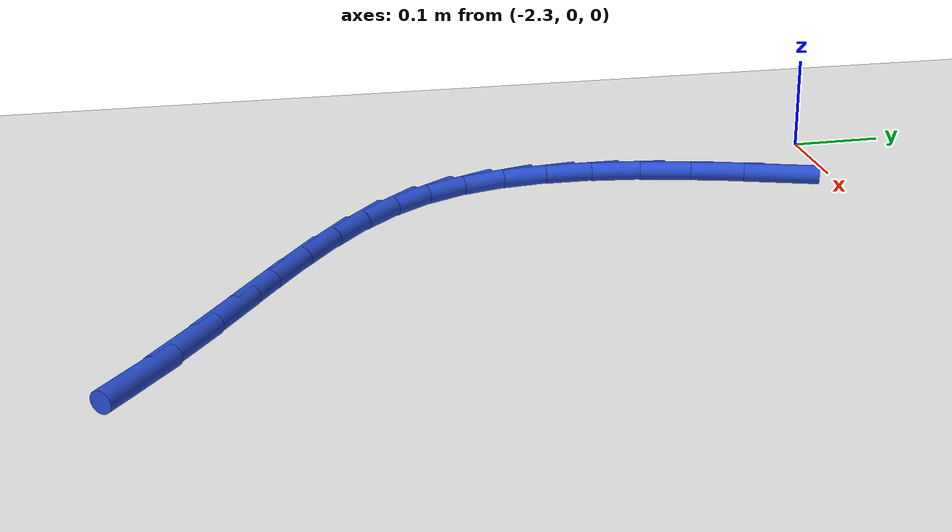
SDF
<sdf version="1.6">
 <world name="default">
  <model name="ground_plane">
   <static>1</static>
   <link name="link">
    <collision name="collision">
     <geometry><plane><normal>0 0 1</normal><size>100 100</size></plane></geometry>
     <surface><friction><ode><mu>100</mu><mu2>50</mu2></ode></friction></surface>
    </collision>
    <visual name="visual">
     <cast_shadows>0</cast_shadows>
     <geometry><plane><normal>0 0 1</normal><size>100 100</size></plane></geometry>
     <material>
      <script><uri>file://media/materials/scripts/gazebo.material</uri><name>Gazebo/WhiteGlow</name></script>
     </material>
    </visual>
   </link>
  </model>
  <model name="line">
   <link name="link_66">
    <pose>-2.186327415164871 -0.05943001823163808 0.01 0 1.57 1.2614615422744817</pose>
    <collision name="collision">
     <geometry><cylinder><radius>0.01</radius><length>0.08</length></cylinder></geometry>
    </collision>
    <visual name="visual">
     <material>
      <script><name>Gazebo/Blue</name><uri>file://media/materials/scripts/gazebo.material</uri></script>
     </material>
     <geometry><cylinder><radius>0.01</radius><length>0.08</length></cylinder></geometry>
    </visual>
   </link>
   <link name="link_67">
    <pose>-2.203733529710292 -0.11389319431254626 0.01 0 1.57 1.3077008810498016</pose>
    <collision name="collision">
     <geometry><cylinder><radius>0.01</radius><length>0.08</length></cylinder></geometry>
    </collision>
    <visual name="visual">
     <material>
      <script><name>Gazebo/Blue</name><uri>file://media/materials/scripts/gazebo.material</uri></script>
     </material>
     <geometry><cylinder><radius>0.01</radius><length>0.08</length></cylinder></geometry>
    </visual>
   </link>
   <link name="link_68">
    <pose>-2.2180352258589924 -0.16699247620333488 0.01 0 1.57 1.3694814651273493</pose>
    <collision name="collision">
     <geometry><cylinder><radius>0.01</radius><length>0.08</length></cylinder></geometry>
    </collision>
    <visual name="visual">
     <material>
      <script><name>Gazebo/Blue</name><uri>file://media/materials/scripts/gazebo.material</uri></script>
     </material>
     <geometry><cylinder><radius>0.01</radius><length>0.08</length></cylinder></geometry>
    </visual>
   </link>
   <link name="link_69">
    <pose>-2.2285388616440196 -0.21846088175727735 0.01 0 1.57 1.4501054148014685</pose>
    <collision name="collision">
     <geometry><cylinder><radius>0.01</radius><length>0.08</length></cylinder></geometry>
    </collision>
    <visual name="visual">
     <material>
      <script><name>Gazebo/Blue</name><uri>file://media/materials/scripts/gazebo.material</uri></script>
     </material>
     <geometry><cylinder><radius>0.01</radius><length>0.08</length></cylinder></geometry>
    </visual>
   </link>
   <link name="link_70">
    <pose>-2.234550795098422 -0.26803142882764763 0.01 0 1.57 1.5533616029075807</pose>
    <collision name="collision">
     <geometry><cylinder><radius>0.01</radius><length>0.08</length></cylinder></geometry>
    </collision>
    <visual name="visual">
     <material>
      <script><name>Gazebo/Blue</name><uri>file://media/materials/scripts/gazebo.material</uri></script>
     </material>
     <geometry><cylinder><radius>0.01</radius><length>0.08</length></cylinder></geometry>
    </visual>
   </link>
   <link name="link_71">
    <pose>-2.2353773842552425 -0.3154371352677168 0.01 0 1.57 -1.458924686413017</pose>
    <collision name="collision">
     <geometry><cylinder><radius>0.01</radius><length>0.08</length></cylinder></geometry>
    </collision>
    <visual name="visual">
     <material>
      <script><name>Gazebo/Blue</name><uri>file://media/materials/scripts/gazebo.material</uri></script>
     </material>
     <geometry><cylinder><radius>0.01</radius><length>0.08</length></cylinder></geometry>
    </visual>
   </link>
   <link name="link_72">
    <pose>-2.230324987147531 -0.36041101893075855 0.01 0 1.57 -1.3024437795642843</pose>
    <collision name="collision">
     <geometry><cylinder><radius>0.01</radius><length>0.08</length></cylinder></geometry>
    </collision>
    <visual name="visual">
     <material>
      <script><name>Gazebo/Blue</name><uri>file://media/materials/scripts/gazebo.material</uri></script>
     </material>
     <geometry><cylinder><radius>0.01</radius><length>0.08</length></cylinder></geometry>
    </visual>
   </link>
   <link name="link_73">
    <pose>-2.218699961808333 -0.4026860976700458 0.01 0 1.57 -1.1228043198596822</pose>
    <collision name="collision">
     <geometry><cylinder><radius>0.01</radius><length>0.08</length></cylinder></geometry>
    </collision>
    <visual name="visual">
     <material>
      <script><name>Gazebo/Blue</name><uri>file://media/materials/scripts/gazebo.material</uri></script>
     </material>
     <geometry><cylinder><radius>0.01</radius><length>0.08</length></cylinder></geometry>
    </visual>
   </link>
   <link name="link_74">
    <pose>-2.1998086662706955 -0.4419953893388514 0.01 0 1.57 -0.9354505484432778</pose>
    <collision name="collision">
     <geometry><cylinder><radius>0.01</radius><length>0.08</length></cylinder></geometry>
    </collision>
    <visual name="visual">
     <material>
      <script><name>Gazebo/Blue</name><uri>file://media/materials/scripts/gazebo.material</uri></script>
     </material>
     <geometry><cylinder><radius>0.01</radius><length>0.08</length></cylinder></geometry>
    </visual>
   </link>
   <link name="link_75">
    <pose>-2.173144066462558 -0.478158895029977 0.01 0 1.57 -0.7819897169901128</pose>
    <collision name="collision">
     <geometry><cylinder><radius>0.01</radius><length>0.08</length></cylinder></geometry>
    </collision>
    <visual name="visual">
     <material>
      <script><name>Gazebo/Blue</name><uri>file://media/materials/scripts/gazebo.material</uri></script>
     </material>
     <geometry><cylinder><radius>0.01</radius><length>0.08</length></cylinder></geometry>
    </visual>
   </link>
   <link name="link_76">
    <pose>-2.139480403812776 -0.5115938547358004 0.01 0 1.57 -0.6730987185904969</pose>
    <collision name="collision">
     <geometry><cylinder><radius>0.01</radius><length>0.08</length></cylinder></geometry>
    </collision>
    <visual name="visual">
     <material>
      <script><name>Gazebo/Blue</name><uri>file://media/materials/scripts/gazebo.material</uri></script>
     </material>
     <geometry><cylinder><radius>0.01</radius><length>0.08</length></cylinder></geometry>
    </visual>
   </link>
   <link name="link_77">
    <pose>-2.1001300106540906 -0.5429683279009405 0.01 0 1.57 -0.6010965579283606</pose>
    <collision name="collision">
     <geometry><cylinder><radius>0.01</radius><length>0.08</length></cylinder></geometry>
    </collision>
    <visual name="visual">
     <material>
      <script><name>Gazebo/Blue</name><uri>file://media/materials/scripts/gazebo.material</uri></script>
     </material>
     <geometry><cylinder><radius>0.01</radius><length>0.08</length></cylinder></geometry>
    </visual>
   </link>
   <link name="link_78">
    <pose>-2.056407071876054 -0.5729512374993596 0.01 0 1.57 -0.5589367544213311</pose>
    <collision name="collision">
     <geometry><cylinder><radius>0.01</radius><length>0.08</length></cylinder></geometry>
    </collision>
    <visual name="visual">
     <material>
      <script><name>Gazebo/Blue</name><uri>file://media/materials/scripts/gazebo.material</uri></script>
     </material>
     <geometry><cylinder><radius>0.01</radius><length>0.08</length></cylinder></geometry>
    </visual>
   </link>
   <link name="link_79">
    <pose>-2.0096257723682207 -0.6022115065050194 0.01 0 1.57 -0.5418012858945266</pose>
    <collision name="collision">
     <geometry><cylinder><radius>0.01</radius><length>0.08</length></cylinder></geometry>
    </collision>
    <visual name="visual">
     <material>
      <script><name>Gazebo/Blue</name><uri>file://media/materials/scripts/gazebo.material</uri></script>
     </material>
     <geometry><cylinder><radius>0.01</radius><length>0.08</length></cylinder></geometry>
    </visual>
   </link>
   <link name="link_80">
    <pose>-1.9611002970201423 -0.631418057891882 0.01 0 1.57 -0.5471282536159435</pose>
    <collision name="collision">
     <geometry><cylinder><radius>0.01</radius><length>0.08</length></cylinder></geometry>
    </collision>
    <visual name="visual">
     <material>
      <script><name>Gazebo/Blue</name><uri>file://media/materials/scripts/gazebo.material</uri></script>
     </material>
     <geometry><cylinder><radius>0.01</radius><length>0.08</length></cylinder></geometry>
    </visual>
   </link>
   <link name="link_81">
    <pose>-1.9121448307213735 -0.6612398146339099 0.01 0 1.57 -0.5743186740403666</pose>
    <collision name="collision">
     <geometry><cylinder><radius>0.01</radius><length>0.08</length></cylinder></geometry>
    </collision>
    <visual name="visual">
     <material>
      <script><name>Gazebo/Blue</name><uri>file://media/materials/scripts/gazebo.material</uri></script>
     </material>
     <geometry><cylinder><radius>0.01</radius><length>0.08</length></cylinder></geometry>
    </visual>
   </link>
   <link name="link_82">
    <pose>-1.864073558361467 -0.6923456997050651 0.01 0 1.57 -0.6244601234668081</pose>
    <collision name="collision">
     <geometry><cylinder><radius>0.01</radius><length>0.08</length></cylinder></geometry>
    </collision>
    <visual name="visual">
     <material>
      <script><name>Gazebo/Blue</name><uri>file://media/materials/scripts/gazebo.material</uri></script>
     </material>
     <geometry><cylinder><radius>0.01</radius><length>0.08</length></cylinder></geometry>
    </visual>
   </link>
  </model>
 </world>
</sdf>
